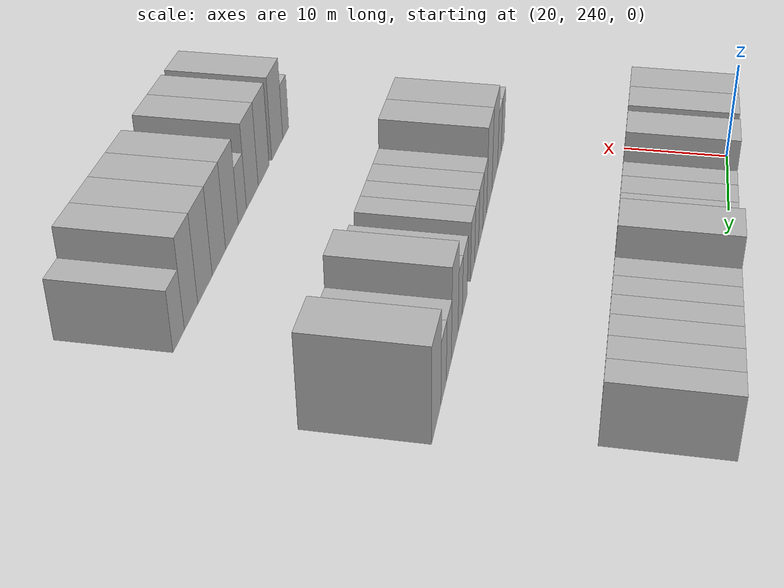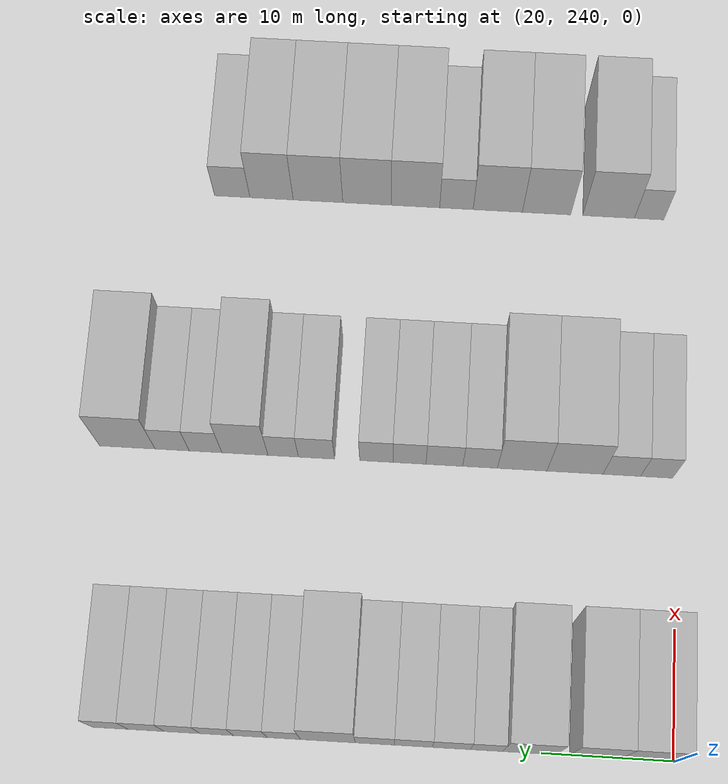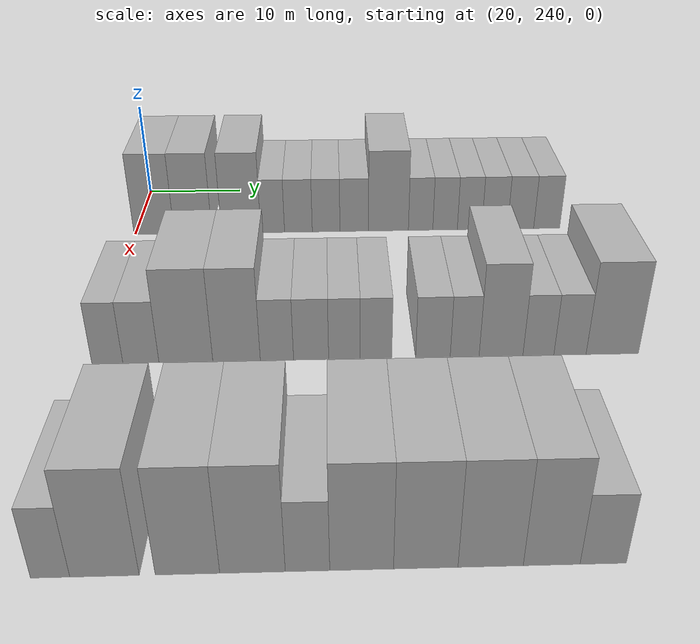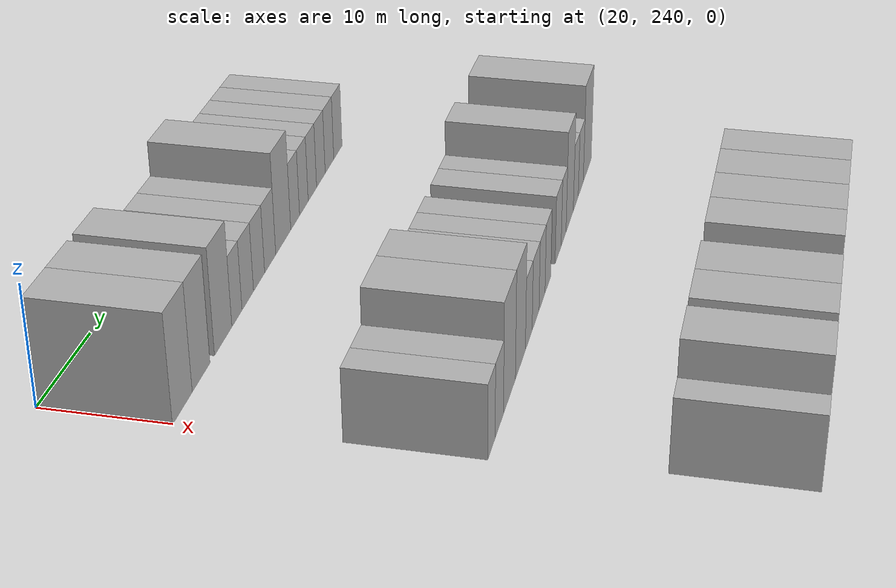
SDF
<sdf version="1.6">
 <world name="default">
  <model name="building_149">
   <static>1</static>
   <pose>25.0000 241.9610 0 0.000000 0.000000 0.000000</pose>
   <link name="link">
    <pose>0 0 4.50 0 0 0</pose>
    <collision name="collision"><geometry><box><size>10.0000 4.1274 9.0000</size></box></geometry></collision>
    <visual name="visual">
     <cast_shadows>0</cast_shadows>
     <geometry><box><size>10.0000 4.1274 9.0000</size></box></geometry>
     <material>
      <script>
       <uri>model://HANNAS_wall/materials/scripts</uri>
       <uri>model://HANNAS_wall/materials/textures</uri>
       <name>vrc/HANNAS_wall</name>
      </script>
     </material>
    </visual>
   </link>
  </model>
  <model name="building_150">
   <static>1</static>
   <pose>25.0000 245.9690 0 0.000000 0.000000 0.000000</pose>
   <link name="link">
    <pose>0 0 4.50 0 0 0</pose>
    <collision name="collision"><geometry><box><size>10.0000 3.8886 9.0000</size></box></geometry></collision>
    <visual name="visual">
     <cast_shadows>0</cast_shadows>
     <geometry><box><size>10.0000 3.8886 9.0000</size></box></geometry>
     <material>
      <script>
       <uri>model://HANNAS_wall/materials/scripts</uri>
       <uri>model://HANNAS_wall/materials/textures</uri>
       <name>vrc/HANNAS_wall</name>
      </script>
     </material>
    </visual>
   </link>
  </model>
  <model name="building_151">
   <static>1</static>
   <pose>25.0000 250.9404 0 0.000000 0.000000 0.000000</pose>
   <link name="link">
    <pose>0 0 4.50 0 0 0</pose>
    <collision name="collision"><geometry><box><size>10.0000 4.0543 9.0000</size></box></geometry></collision>
    <visual name="visual">
     <cast_shadows>0</cast_shadows>
     <geometry><box><size>10.0000 4.0543 9.0000</size></box></geometry>
     <material>
      <script>
       <uri>model://HANNAS_wall/materials/scripts</uri>
       <uri>model://HANNAS_wall/materials/textures</uri>
       <name>vrc/HANNAS_wall</name>
      </script>
     </material>
    </visual>
   </link>
  </model>
  <model name="building_152">
   <static>1</static>
   <pose>25.0000 254.1960 0 0.000000 0.000000 0.000000</pose>
   <link name="link">
    <pose>0 0 3.00 0 0 0</pose>
    <collision name="collision"><geometry><box><size>10.0000 2.4568 6.0000</size></box></geometry></collision>
    <visual name="visual">
     <cast_shadows>0</cast_shadows>
     <geometry><box><size>10.0000 2.4568 6.0000</size></box></geometry>
     <material>
      <script>
       <uri>model://HANNAS_wall/materials/scripts</uri>
       <uri>model://HANNAS_wall/materials/textures</uri>
       <name>vrc/HANNAS_wall</name>
      </script>
     </material>
    </visual>
   </link>
  </model>
  <model name="building_153">
   <static>1</static>
   <pose>25.0000 256.8638 0 0.000000 0.000000 0.000000</pose>
   <link name="link">
    <pose>0 0 3.00 0 0 0</pose>
    <collision name="collision"><geometry><box><size>10.0000 2.8788 6.0000</size></box></geometry></collision>
    <visual name="visual">
     <cast_shadows>0</cast_shadows>
     <geometry><box><size>10.0000 2.8788 6.0000</size></box></geometry>
     <material>
      <script>
       <uri>model://HANNAS_wall/materials/scripts</uri>
       <uri>model://HANNAS_wall/materials/textures</uri>
       <name>vrc/HANNAS_wall</name>
      </script>
     </material>
    </visual>
   </link>
  </model>
  <model name="building_154">
   <static>1</static>
   <pose>25.0000 259.7369 0 0.000000 0.000000 0.000000</pose>
   <link name="link">
    <pose>0 0 3.00 0 0 0</pose>
    <collision name="collision"><geometry><box><size>10.0000 2.8675 6.0000</size></box></geometry></collision>
    <visual name="visual">
     <cast_shadows>0</cast_shadows>
     <geometry><box><size>10.0000 2.8675 6.0000</size></box></geometry>
     <material>
      <script>
       <uri>model://HANNAS_wall/materials/scripts</uri>
       <uri>model://HANNAS_wall/materials/textures</uri>
       <name>vrc/HANNAS_wall</name>
      </script>
     </material>
    </visual>
   </link>
  </model>
  <model name="building_155">
   <static>1</static>
   <pose>25.0000 262.6521 0 0.000000 0.000000 0.000000</pose>
   <link name="link">
    <pose>0 0 3.00 0 0 0</pose>
    <collision name="collision"><geometry><box><size>10.0000 2.9629 6.0000</size></box></geometry></collision>
    <visual name="visual">
     <cast_shadows>0</cast_shadows>
     <geometry><box><size>10.0000 2.9629 6.0000</size></box></geometry>
     <material>
      <script>
       <uri>model://HANNAS_wall/materials/scripts</uri>
       <uri>model://HANNAS_wall/materials/textures</uri>
       <name>vrc/HANNAS_wall</name>
      </script>
     </material>
    </visual>
   </link>
  </model>
  <model name="building_156">
   <static>1</static>
   <pose>25.0000 266.2186 0 0.000000 0.000000 0.000000</pose>
   <link name="link">
    <pose>0 0 4.50 0 0 0</pose>
    <collision name="collision"><geometry><box><size>10.0000 4.1701 9.0000</size></box></geometry></collision>
    <visual name="visual">
     <cast_shadows>0</cast_shadows>
     <geometry><box><size>10.0000 4.1701 9.0000</size></box></geometry>
     <material>
      <script>
       <uri>model://HANNAS_wall/materials/scripts</uri>
       <uri>model://HANNAS_wall/materials/textures</uri>
       <name>vrc/HANNAS_wall</name>
      </script>
     </material>
    </visual>
   </link>
  </model>
  <model name="building_157">
   <static>1</static>
   <pose>25.0000 269.5779 0 0.000000 0.000000 0.000000</pose>
   <link name="link">
    <pose>0 0 3.00 0 0 0</pose>
    <collision name="collision"><geometry><box><size>10.0000 2.5486 6.0000</size></box></geometry></collision>
    <visual name="visual">
     <cast_shadows>0</cast_shadows>
     <geometry><box><size>10.0000 2.5486 6.0000</size></box></geometry>
     <material>
      <script>
       <uri>model://HANNAS_wall/materials/scripts</uri>
       <uri>model://HANNAS_wall/materials/textures</uri>
       <name>vrc/HANNAS_wall</name>
      </script>
     </material>
    </visual>
   </link>
  </model>
  <model name="building_158">
   <static>1</static>
   <pose>25.0000 272.1346 0 0.000000 0.000000 0.000000</pose>
   <link name="link">
    <pose>0 0 3.00 0 0 0</pose>
    <collision name="collision"><geometry><box><size>10.0000 2.5648 6.0000</size></box></geometry></collision>
    <visual name="visual">
     <cast_shadows>0</cast_shadows>
     <geometry><box><size>10.0000 2.5648 6.0000</size></box></geometry>
     <material>
      <script>
       <uri>model://HANNAS_wall/materials/scripts</uri>
       <uri>model://HANNAS_wall/materials/textures</uri>
       <name>vrc/HANNAS_wall</name>
      </script>
     </material>
    </visual>
   </link>
  </model>
  <model name="building_159">
   <static>1</static>
   <pose>25.0000 274.6965 0 0.000000 0.000000 0.000000</pose>
   <link name="link">
    <pose>0 0 3.00 0 0 0</pose>
    <collision name="collision"><geometry><box><size>10.0000 2.5590 6.0000</size></box></geometry></collision>
    <visual name="visual">
     <cast_shadows>0</cast_shadows>
     <geometry><box><size>10.0000 2.5590 6.0000</size></box></geometry>
     <material>
      <script>
       <uri>model://HANNAS_wall/materials/scripts</uri>
       <uri>model://HANNAS_wall/materials/textures</uri>
       <name>vrc/HANNAS_wall</name>
      </script>
     </material>
    </visual>
   </link>
  </model>
  <model name="building_160">
   <static>1</static>
   <pose>25.0000 277.3248 0 0.000000 0.000000 0.000000</pose>
   <link name="link">
    <pose>0 0 3.00 0 0 0</pose>
    <collision name="collision"><geometry><box><size>10.0000 2.6975 6.0000</size></box></geometry></collision>
    <visual name="visual">
     <cast_shadows>0</cast_shadows>
     <geometry><box><size>10.0000 2.6975 6.0000</size></box></geometry>
     <material>
      <script>
       <uri>model://HANNAS_wall/materials/scripts</uri>
       <uri>model://HANNAS_wall/materials/textures</uri>
       <name>vrc/HANNAS_wall</name>
      </script>
     </material>
    </visual>
   </link>
  </model>
  <model name="building_161">
   <static>1</static>
   <pose>25.0000 280.0527 0 0.000000 0.000000 0.000000</pose>
   <link name="link">
    <pose>0 0 3.00 0 0 0</pose>
    <collision name="collision"><geometry><box><size>10.0000 2.7583 6.0000</size></box></geometry></collision>
    <visual name="visual">
     <cast_shadows>0</cast_shadows>
     <geometry><box><size>10.0000 2.7583 6.0000</size></box></geometry>
     <material>
      <script>
       <uri>model://HANNAS_wall/materials/scripts</uri>
       <uri>model://HANNAS_wall/materials/textures</uri>
       <name>vrc/HANNAS_wall</name>
      </script>
     </material>
    </visual>
   </link>
  </model>
  <model name="building_162">
   <static>1</static>
   <pose>25.0000 282.8000 0 0.000000 0.000000 0.000000</pose>
   <link name="link">
    <pose>0 0 3.00 0 0 0</pose>
    <collision name="collision"><geometry><box><size>10.0000 2.7363 6.0000</size></box></geometry></collision>
    <visual name="visual">
     <cast_shadows>0</cast_shadows>
     <geometry><box><size>10.0000 2.7363 6.0000</size></box></geometry>
     <material>
      <script>
       <uri>model://HANNAS_wall/materials/scripts</uri>
       <uri>model://HANNAS_wall/materials/textures</uri>
       <name>vrc/HANNAS_wall</name>
      </script>
     </material>
    </visual>
   </link>
  </model>
  <model name="building_331">
   <static>1</static>
   <pose>47.0000 241.5881 0 0.000000 0.000000 0.000000</pose>
   <link name="link">
    <pose>0 0 3.00 0 0 0</pose>
    <collision name="collision"><geometry><box><size>10.0000 2.5483 6.0000</size></box></geometry></collision>
    <visual name="visual">
     <cast_shadows>0</cast_shadows>
     <geometry><box><size>10.0000 2.5483 6.0000</size></box></geometry>
     <material>
      <script>
       <uri>model://HANNAS_wall/materials/scripts</uri>
       <uri>model://HANNAS_wall/materials/textures</uri>
       <name>vrc/HANNAS_wall</name>
      </script>
     </material>
    </visual>
   </link>
  </model>
  <model name="building_332">
   <static>1</static>
   <pose>47.0000 244.3534 0 0.000000 0.000000 0.000000</pose>
   <link name="link">
    <pose>0 0 3.00 0 0 0</pose>
    <collision name="collision"><geometry><box><size>10.0000 2.9823 6.0000</size></box></geometry></collision>
    <visual name="visual">
     <cast_shadows>0</cast_shadows>
     <geometry><box><size>10.0000 2.9823 6.0000</size></box></geometry>
     <material>
      <script>
       <uri>model://HANNAS_wall/materials/scripts</uri>
       <uri>model://HANNAS_wall/materials/textures</uri>
       <name>vrc/HANNAS_wall</name>
      </script>
     </material>
    </visual>
   </link>
  </model>
  <model name="building_333">
   <static>1</static>
   <pose>47.0000 248.0723 0 0.000000 0.000000 0.000000</pose>
   <link name="link">
    <pose>0 0 4.50 0 0 0</pose>
    <collision name="collision"><geometry><box><size>10.0000 4.4555 9.0000</size></box></geometry></collision>
    <visual name="visual">
     <cast_shadows>0</cast_shadows>
     <geometry><box><size>10.0000 4.4555 9.0000</size></box></geometry>
     <material>
      <script>
       <uri>model://HANNAS_wall/materials/scripts</uri>
       <uri>model://HANNAS_wall/materials/textures</uri>
       <name>vrc/HANNAS_wall</name>
      </script>
     </material>
    </visual>
   </link>
  </model>
  <model name="building_334">
   <static>1</static>
   <pose>47.0000 252.2706 0 0.000000 0.000000 0.000000</pose>
   <link name="link">
    <pose>0 0 4.50 0 0 0</pose>
    <collision name="collision"><geometry><box><size>10.0000 3.9410 9.0000</size></box></geometry></collision>
    <visual name="visual">
     <cast_shadows>0</cast_shadows>
     <geometry><box><size>10.0000 3.9410 9.0000</size></box></geometry>
     <material>
      <script>
       <uri>model://HANNAS_wall/materials/scripts</uri>
       <uri>model://HANNAS_wall/materials/textures</uri>
       <name>vrc/HANNAS_wall</name>
      </script>
     </material>
    </visual>
   </link>
  </model>
  <model name="building_335">
   <static>1</static>
   <pose>47.0000 255.6231 0 0.000000 0.000000 0.000000</pose>
   <link name="link">
    <pose>0 0 3.00 0 0 0</pose>
    <collision name="collision"><geometry><box><size>10.0000 2.7640 6.0000</size></box></geometry></collision>
    <visual name="visual">
     <cast_shadows>0</cast_shadows>
     <geometry><box><size>10.0000 2.7640 6.0000</size></box></geometry>
     <material>
      <script>
       <uri>model://HANNAS_wall/materials/scripts</uri>
       <uri>model://HANNAS_wall/materials/textures</uri>
       <name>vrc/HANNAS_wall</name>
      </script>
     </material>
    </visual>
   </link>
  </model>
  <model name="building_336">
   <static>1</static>
   <pose>47.0000 258.4677 0 0.000000 0.000000 0.000000</pose>
   <link name="link">
    <pose>0 0 3.00 0 0 0</pose>
    <collision name="collision"><geometry><box><size>10.0000 2.9253 6.0000</size></box></geometry></collision>
    <visual name="visual">
     <cast_shadows>0</cast_shadows>
     <geometry><box><size>10.0000 2.9253 6.0000</size></box></geometry>
     <material>
      <script>
       <uri>model://HANNAS_wall/materials/scripts</uri>
       <uri>model://HANNAS_wall/materials/textures</uri>
       <name>vrc/HANNAS_wall</name>
      </script>
     </material>
    </visual>
   </link>
  </model>
  <model name="building_337">
   <static>1</static>
   <pose>47.0000 261.2442 0 0.000000 0.000000 0.000000</pose>
   <link name="link">
    <pose>0 0 3.00 0 0 0</pose>
    <collision name="collision"><geometry><box><size>10.0000 2.6276 6.0000</size></box></geometry></collision>
    <visual name="visual">
     <cast_shadows>0</cast_shadows>
     <geometry><box><size>10.0000 2.6276 6.0000</size></box></geometry>
     <material>
      <script>
       <uri>model://HANNAS_wall/materials/scripts</uri>
       <uri>model://HANNAS_wall/materials/textures</uri>
       <name>vrc/HANNAS_wall</name>
      </script>
     </material>
    </visual>
   </link>
  </model>
  <model name="building_338">
   <static>1</static>
   <pose>47.0000 263.8797 0 0.000000 0.000000 0.000000</pose>
   <link name="link">
    <pose>0 0 3.00 0 0 0</pose>
    <collision name="collision"><geometry><box><size>10.0000 2.6434 6.0000</size></box></geometry></collision>
    <visual name="visual">
     <cast_shadows>0</cast_shadows>
     <geometry><box><size>10.0000 2.6434 6.0000</size></box></geometry>
     <material>
      <script>
       <uri>model://HANNAS_wall/materials/scripts</uri>
       <uri>model://HANNAS_wall/materials/textures</uri>
       <name>vrc/HANNAS_wall</name>
      </script>
     </material>
    </visual>
   </link>
  </model>
  <model name="building_339">
   <static>1</static>
   <pose>47.0000 268.6510 0 0.000000 0.000000 0.000000</pose>
   <link name="link">
    <pose>0 0 3.00 0 0 0</pose>
    <collision name="collision"><geometry><box><size>10.0000 2.8993 6.0000</size></box></geometry></collision>
    <visual name="visual">
     <cast_shadows>0</cast_shadows>
     <geometry><box><size>10.0000 2.8993 6.0000</size></box></geometry>
     <material>
      <script>
       <uri>model://HANNAS_wall/materials/scripts</uri>
       <uri>model://HANNAS_wall/materials/textures</uri>
       <name>vrc/HANNAS_wall</name>
      </script>
     </material>
    </visual>
   </link>
  </model>
  <model name="building_340">
   <static>1</static>
   <pose>47.0000 271.3141 0 0.000000 0.000000 0.000000</pose>
   <link name="link">
    <pose>0 0 3.00 0 0 0</pose>
    <collision name="collision"><geometry><box><size>10.0000 2.4270 6.0000</size></box></geometry></collision>
    <visual name="visual">
     <cast_shadows>0</cast_shadows>
     <geometry><box><size>10.0000 2.4270 6.0000</size></box></geometry>
     <material>
      <script>
       <uri>model://HANNAS_wall/materials/scripts</uri>
       <uri>model://HANNAS_wall/materials/textures</uri>
       <name>vrc/HANNAS_wall</name>
      </script>
     </material>
    </visual>
   </link>
  </model>
  <model name="building_341">
   <static>1</static>
   <pose>47.0000 274.3747 0 0.000000 0.000000 0.000000</pose>
   <link name="link">
    <pose>0 0 4.50 0 0 0</pose>
    <collision name="collision"><geometry><box><size>10.0000 3.6941 9.0000</size></box></geometry></collision>
    <visual name="visual">
     <cast_shadows>0</cast_shadows>
     <geometry><box><size>10.0000 3.6941 9.0000</size></box></geometry>
     <material>
      <script>
       <uri>model://HANNAS_wall/materials/scripts</uri>
       <uri>model://HANNAS_wall/materials/textures</uri>
       <name>vrc/HANNAS_wall</name>
      </script>
     </material>
    </visual>
   </link>
  </model>
  <model name="building_342">
   <static>1</static>
   <pose>47.0000 277.5287 0 0.000000 0.000000 0.000000</pose>
   <link name="link">
    <pose>0 0 3.00 0 0 0</pose>
    <collision name="collision"><geometry><box><size>10.0000 2.6140 6.0000</size></box></geometry></collision>
    <visual name="visual">
     <cast_shadows>0</cast_shadows>
     <geometry><box><size>10.0000 2.6140 6.0000</size></box></geometry>
     <material>
      <script>
       <uri>model://HANNAS_wall/materials/scripts</uri>
       <uri>model://HANNAS_wall/materials/textures</uri>
       <name>vrc/HANNAS_wall</name>
      </script>
     </material>
    </visual>
   </link>
  </model>
  <model name="building_343">
   <static>1</static>
   <pose>47.0000 280.1992 0 0.000000 0.000000 0.000000</pose>
   <link name="link">
    <pose>0 0 3.00 0 0 0</pose>
    <collision name="collision"><geometry><box><size>10.0000 2.7270 6.0000</size></box></geometry></collision>
    <visual name="visual">
     <cast_shadows>0</cast_shadows>
     <geometry><box><size>10.0000 2.7270 6.0000</size></box></geometry>
     <material>
      <script>
       <uri>model://HANNAS_wall/materials/scripts</uri>
       <uri>model://HANNAS_wall/materials/textures</uri>
       <name>vrc/HANNAS_wall</name>
      </script>
     </material>
    </visual>
   </link>
  </model>
  <model name="building_344">
   <static>1</static>
   <pose>47.0000 283.7846 0 0.000000 0.000000 0.000000</pose>
   <link name="link">
    <pose>0 0 4.50 0 0 0</pose>
    <collision name="collision"><geometry><box><size>10.0000 4.4437 9.0000</size></box></geometry></collision>
    <visual name="visual">
     <cast_shadows>0</cast_shadows>
     <geometry><box><size>10.0000 4.4437 9.0000</size></box></geometry>
     <material>
      <script>
       <uri>model://HANNAS_wall/materials/scripts</uri>
       <uri>model://HANNAS_wall/materials/textures</uri>
       <name>vrc/HANNAS_wall</name>
      </script>
     </material>
    </visual>
   </link>
  </model>
  <model name="building_517">
   <static>1</static>
   <pose>69.0000 242.4842 0 0.000000 0.000000 0.000000</pose>
   <link name="link">
    <pose>0 0 3.00 0 0 0</pose>
    <collision name="collision"><geometry><box><size>10.0000 2.4347 6.0000</size></box></geometry></collision>
    <visual name="visual">
     <cast_shadows>0</cast_shadows>
     <geometry><box><size>10.0000 2.4347 6.0000</size></box></geometry>
     <material>
      <script>
       <uri>model://HANNAS_wall/materials/scripts</uri>
       <uri>model://HANNAS_wall/materials/textures</uri>
       <name>vrc/HANNAS_wall</name>
      </script>
     </material>
    </visual>
   </link>
  </model>
  <model name="building_518">
   <static>1</static>
   <pose>69.0000 245.8550 0 0.000000 0.000000 0.000000</pose>
   <link name="link">
    <pose>0 0 4.50 0 0 0</pose>
    <collision name="collision"><geometry><box><size>10.0000 4.3069 9.0000</size></box></geometry></collision>
    <visual name="visual">
     <cast_shadows>0</cast_shadows>
     <geometry><box><size>10.0000 4.3069 9.0000</size></box></geometry>
     <material>
      <script>
       <uri>model://HANNAS_wall/materials/scripts</uri>
       <uri>model://HANNAS_wall/materials/textures</uri>
       <name>vrc/HANNAS_wall</name>
      </script>
     </material>
    </visual>
   </link>
  </model>
  <model name="building_519">
   <static>1</static>
   <pose>69.0000 251.0198 0 0.000000 0.000000 0.000000</pose>
   <link name="link">
    <pose>0 0 4.50 0 0 0</pose>
    <collision name="collision"><geometry><box><size>10.0000 4.0227 9.0000</size></box></geometry></collision>
    <visual name="visual">
     <cast_shadows>0</cast_shadows>
     <geometry><box><size>10.0000 4.0227 9.0000</size></box></geometry>
     <material>
      <script>
       <uri>model://HANNAS_wall/materials/scripts</uri>
       <uri>model://HANNAS_wall/materials/textures</uri>
       <name>vrc/HANNAS_wall</name>
      </script>
     </material>
    </visual>
   </link>
  </model>
  <model name="building_520">
   <static>1</static>
   <pose>69.0000 255.0822 0 0.000000 0.000000 0.000000</pose>
   <link name="link">
    <pose>0 0 4.50 0 0 0</pose>
    <collision name="collision"><geometry><box><size>10.0000 4.1023 9.0000</size></box></geometry></collision>
    <visual name="visual">
     <cast_shadows>0</cast_shadows>
     <geometry><box><size>10.0000 4.1023 9.0000</size></box></geometry>
     <material>
      <script>
       <uri>model://HANNAS_wall/materials/scripts</uri>
       <uri>model://HANNAS_wall/materials/textures</uri>
       <name>vrc/HANNAS_wall</name>
      </script>
     </material>
    </visual>
   </link>
  </model>
  <model name="building_521">
   <static>1</static>
   <pose>69.0000 258.5298 0 0.000000 0.000000 0.000000</pose>
   <link name="link">
    <pose>0 0 3.00 0 0 0</pose>
    <collision name="collision"><geometry><box><size>10.0000 2.7928 6.0000</size></box></geometry></collision>
    <visual name="visual">
     <cast_shadows>0</cast_shadows>
     <geometry><box><size>10.0000 2.7928 6.0000</size></box></geometry>
     <material>
      <script>
       <uri>model://HANNAS_wall/materials/scripts</uri>
       <uri>model://HANNAS_wall/materials/textures</uri>
       <name>vrc/HANNAS_wall</name>
      </script>
     </material>
    </visual>
   </link>
  </model>
  <model name="building_522">
   <static>1</static>
   <pose>69.0000 261.9354 0 0.000000 0.000000 0.000000</pose>
   <link name="link">
    <pose>0 0 4.50 0 0 0</pose>
    <collision name="collision"><geometry><box><size>10.0000 4.0185 9.0000</size></box></geometry></collision>
    <visual name="visual">
     <cast_shadows>0</cast_shadows>
     <geometry><box><size>10.0000 4.0185 9.0000</size></box></geometry>
     <material>
      <script>
       <uri>model://HANNAS_wall/materials/scripts</uri>
       <uri>model://HANNAS_wall/materials/textures</uri>
       <name>vrc/HANNAS_wall</name>
      </script>
     </material>
    </visual>
   </link>
  </model>
  <model name="building_523">
   <static>1</static>
   <pose>69.0000 265.9825 0 0.000000 0.000000 0.000000</pose>
   <link name="link">
    <pose>0 0 4.50 0 0 0</pose>
    <collision name="collision"><geometry><box><size>10.0000 4.0757 9.0000</size></box></geometry></collision>
    <visual name="visual">
     <cast_shadows>0</cast_shadows>
     <geometry><box><size>10.0000 4.0757 9.0000</size></box></geometry>
     <material>
      <script>
       <uri>model://HANNAS_wall/materials/scripts</uri>
       <uri>model://HANNAS_wall/materials/textures</uri>
       <name>vrc/HANNAS_wall</name>
      </script>
     </material>
    </visual>
   </link>
  </model>
  <model name="building_524">
   <static>1</static>
   <pose>69.0000 270.0917 0 0.000000 0.000000 0.000000</pose>
   <link name="link">
    <pose>0 0 4.50 0 0 0</pose>
    <collision name="collision"><geometry><box><size>10.0000 4.1426 9.0000</size></box></geometry></collision>
    <visual name="visual">
     <cast_shadows>0</cast_shadows>
     <geometry><box><size>10.0000 4.1426 9.0000</size></box></geometry>
     <material>
      <script>
       <uri>model://HANNAS_wall/materials/scripts</uri>
       <uri>model://HANNAS_wall/materials/textures</uri>
       <name>vrc/HANNAS_wall</name>
      </script>
     </material>
    </visual>
   </link>
  </model>
  <model name="building_525">
   <static>1</static>
   <pose>69.0000 273.9730 0 0.000000 0.000000 0.000000</pose>
   <link name="link">
    <pose>0 0 4.50 0 0 0</pose>
    <collision name="collision"><geometry><box><size>10.0000 3.6200 9.0000</size></box></geometry></collision>
    <visual name="visual">
     <cast_shadows>0</cast_shadows>
     <geometry><box><size>10.0000 3.6200 9.0000</size></box></geometry>
     <material>
      <script>
       <uri>model://HANNAS_wall/materials/scripts</uri>
       <uri>model://HANNAS_wall/materials/textures</uri>
       <name>vrc/HANNAS_wall</name>
      </script>
     </material>
    </visual>
   </link>
  </model>
  <model name="building_526">
   <static>1</static>
   <pose>69.0000 277.2632 0 0.000000 0.000000 0.000000</pose>
   <link name="link">
    <pose>0 0 3.00 0 0 0</pose>
    <collision name="collision"><geometry><box><size>10.0000 2.9604 6.0000</size></box></geometry></collision>
    <visual name="visual">
     <cast_shadows>0</cast_shadows>
     <geometry><box><size>10.0000 2.9604 6.0000</size></box></geometry>
     <material>
      <script>
       <uri>model://HANNAS_wall/materials/scripts</uri>
       <uri>model://HANNAS_wall/materials/textures</uri>
       <name>vrc/HANNAS_wall</name>
      </script>
     </material>
    </visual>
   </link>
  </model>
 </world>
</sdf>
